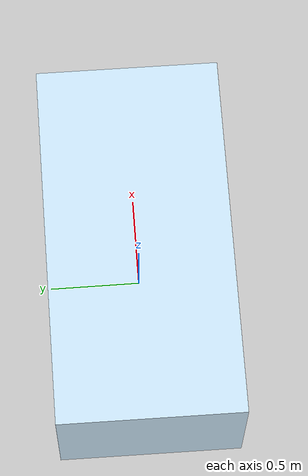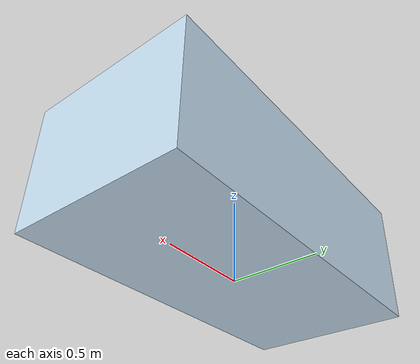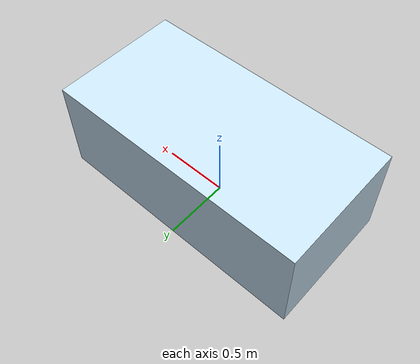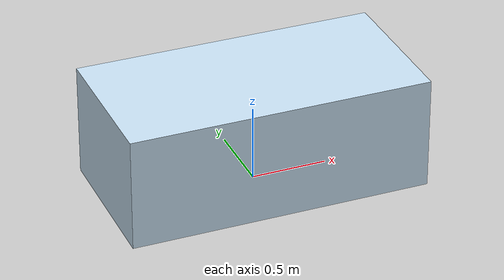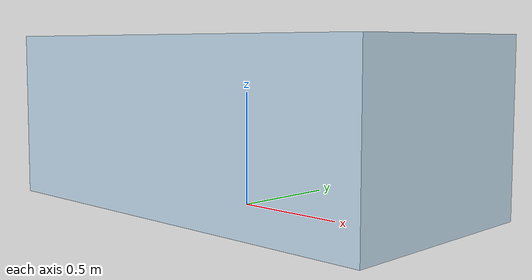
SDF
<?xml version="1.0"?>
<sdf version="1.9">
  <model name="hospital_bed_high">
    <static>true</static>
    <link name="link">
      <collision name="collision_0">
        <pose>0 0 0.375 0 0 0</pose>
        <geometry><box><size>2.0 1.0 0.75</size></box></geometry>
      </collision>
      <visual name="visual_0">
        <pose>0 0 0.375 0 0 0</pose>
        <geometry><box><size>2.0 1.0 0.75</size></box></geometry>
        <material>
          <ambient>0.78 0.88 0.95 1</ambient>
          <diffuse>0.78 0.88 0.95 1</diffuse>
        </material>
      </visual>
    </link>
  </model>
</sdf>
